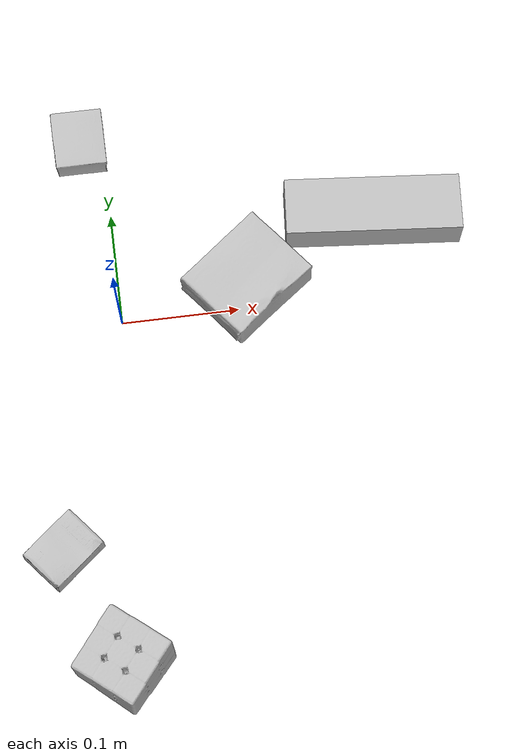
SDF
<sdf version="1.4">
  <world name="default">
    <light name="light1" type="point">
      <pose>0 0 1 0 0 0</pose>
      <diffuse>3 3 3 1</diffuse>
      <specular>3 3 3 1</specular>
    </light>
    <light name="light2" type="point">
      <pose>0 0.5 2 0 0 0</pose>
      <diffuse>1 1 1 1</diffuse>
      <specular>1 1 1 1</specular>
    </light>
    <light name="light3" type="point">
      <pose>0 0.5 2 0 0 0</pose>
      <diffuse>3 3 3 1</diffuse>
      <specular>3 3 3 1</specular>
    </light>
    <scene>
      <ambient>0.7 0.7 0.7</ambient>
    </scene>
    <model name="box1">
      <link name="link_box1">
        <collision name="default">
          <geometry>
            <mesh>
              <uri>model://jenga/collision_meshes/collision.obj</uri>
              <scale>1.0 1.0 1.0</scale>
            </mesh>
          </geometry>
          <surface>
            <friction>
              <ode>
                <mu>0.5</mu>
                <mu2>0.5</mu2>
              </ode>
            </friction>
          <contact>
        <ode>
            <max_vel>0</max_vel>
            <min_depth>0.0001</min_depth>
            <kp>1e8</kp>
        </ode>
    </contact></surface>
        </collision>
        <visual name="default">
          <geometry>
            <mesh>
              <uri>model://jenga/visual_meshes/visual.dae</uri>
              <scale>1.0 1.0 1.0</scale>
            </mesh>
          </geometry>
        </visual>
        <inertial>
          <mass>0.2062758058309555</mass>
          <pose>-2.502855807051674e-07 -0.00010250010382151231 -4.092339804628864e-05 0.0 -7.342154049184251e-07 0.0</pose>
          <inertia>
            <ixx>5.7081514e-05</ixx>
            <iyy>0.0003867828</iyy>
            <izz>0.00041292355</izz>
            <ixy>0</ixy>
            <ixz>0</ixz>
            <iyz>0</iyz>
          </inertia>
        </inertial>
      </link>
      <pose>0.22416968643665314 0.07010971754789352 0.014999995008111 -1.0965369880741081e-09 1.7657156228562022e-09 3.0519429928565303</pose>
    </model>
    <model name="box2">
      <link name="link_box2">
        <collision name="default">
          <geometry>
            <mesh>
              <uri>model://cracker_box/collision_meshes/collision.obj</uri>
              <scale>0.25 0.25 0.25</scale>
            </mesh>
          </geometry>
          <surface>
            <friction>
              <ode>
                <mu>0.5</mu>
                <mu2>0.5</mu2>
              </ode>
            </friction>
          <contact>
        <ode>
            <max_vel>0</max_vel>
            <min_depth>0.0001</min_depth>
            <kp>1e8</kp>
        </ode>
    </contact></surface>
        </collision>
        <visual name="default">
          <geometry>
            <mesh>
              <uri>model://cracker_box/visual_meshes/visual.dae</uri>
              <scale>0.25 0.25 0.25</scale>
            </mesh>
          </geometry>
        </visual>
        <inertial>
          <mass>0.023937078192830086</mass>
          <pose>0.00023660386796109378 6.358562677633017e-05 -0.00042573839891701937 -0.00031620780222672953 -0.011106490531565828 0.0025467947702904154</pose>
          <inertia>
            <ixx>3.8053279e-06</ixx>
            <iyy>6.2833433e-06</iyy>
            <izz>8.966907e-06</izz>
            <ixy>0</ixy>
            <ixz>0</ixz>
            <iyz>0</iyz>
          </inertia>
        </inertial>
      </link>
      <pose>-0.06622259318828583 -0.19243112206459045 0.009120449423789978 -0.011788102365613284 -0.007367152650785586 -2.450827305416774</pose>
    </model>
    <model name="box3">
      <link name="link_box3">
        <collision name="default">
          <geometry>
            <mesh>
              <uri>model://pudding_box/collision_meshes/collision.obj</uri>
              <scale>0.5 0.5 0.5</scale>
            </mesh>
          </geometry>
          <surface>
            <friction>
              <ode>
                <mu>0.5</mu>
                <mu2>0.5</mu2>
              </ode>
            </friction>
          <contact>
        <ode>
            <max_vel>0</max_vel>
            <min_depth>0.0001</min_depth>
            <kp>1e8</kp>
        </ode>
    </contact></surface>
        </collision>
        <visual name="default">
          <geometry>
            <mesh>
              <uri>model://pudding_box/visual_meshes/visual.dae</uri>
              <scale>0.5 0.5 0.5</scale>
            </mesh>
          </geometry>
        </visual>
        <inertial>
          <mass>0.06577561050653458</mass>
          <pose>0.0002447410661261529 0.00040339428232982755 -0.00025944135268218815 0.005213102261421096 -0.006603797796883786 0.020079827023418362</pose>
          <inertia>
            <ixx>1.8588986e-05</ixx>
            <iyy>1.2506803e-05</iyy>
            <izz>2.7451497e-05</izz>
            <ixy>0</ixy>
            <ixz>0</ixz>
            <iyz>0</iyz>
          </inertia>
        </inertial>
      </link>
      <pose>-0.019940784201025963 0.17033466696739197 0.009862905368208885 0.022348536216325 -0.011391713795072065 -3.130954521188638</pose>
    </model>
    <model name="box4">
      <link name="link_box4">
        <collision name="default">
          <geometry>
            <mesh>
              <uri>model://gelatin_box/collision_meshes/collision.obj</uri>
              <scale>1.0 1.0 1.0</scale>
            </mesh>
          </geometry>
          <surface>
            <friction>
              <ode>
                <mu>0.5</mu>
                <mu2>0.5</mu2>
              </ode>
            </friction>
          <contact>
        <ode>
            <max_vel>0</max_vel>
            <min_depth>0.0001</min_depth>
            <kp>1e8</kp>
        </ode>
    </contact></surface>
        </collision>
        <visual name="default">
          <geometry>
            <mesh>
              <uri>model://gelatin_box/visual_meshes/visual.dae</uri>
              <scale>1.0 1.0 1.0</scale>
            </mesh>
          </geometry>
        </visual>
        <inertial>
          <mass>0.21051041781902313</mass>
          <pose>0.000431961816502735 0.00011156871914863586 -0.0003640321083366871 -0.0010503719683328595 -0.0047558182256164224 0.016440557608480007</pose>
          <inertia>
            <ixx>0.0001486032</ixx>
            <iyy>0.00010614647</iyy>
            <izz>0.00022620716</izz>
            <ixy>0</ixy>
            <ixz>0</ixz>
            <iyz>0</iyz>
          </inertia>
        </inertial>
      </link>
      <pose>0.10906384140253067 0.022101756185293198 0.015168314799666405 0.0055974657714973975 -0.007304562534188509 -0.918351962134779</pose>
    </model>
    <model name="box5">
      <link name="link_box5">
        <collision name="default">
          <geometry>
            <mesh>
              <uri>model://rubiks_cube/collision_meshes/collision.obj</uri>
              <scale>1.0 1.0 1.0</scale>
            </mesh>
          </geometry>
          <surface>
            <friction>
              <ode>
                <mu>0.5</mu>
                <mu2>0.5</mu2>
              </ode>
            </friction>
          <contact>
        <ode>
            <max_vel>0</max_vel>
            <min_depth>0.0001</min_depth>
            <kp>1e8</kp>
        </ode>
    </contact></surface>
        </collision>
        <visual name="default">
          <geometry>
            <mesh>
              <uri>model://rubiks_cube/visual_meshes/visual.dae</uri>
              <scale>1.0 1.0 1.0</scale>
            </mesh>
          </geometry>
        </visual>
        <inertial>
          <mass>0.13810032606124878</mass>
          <pose>2.6721041649580002e-05 5.256967051536776e-05 -7.264316082000732e-06 -0.05467240103362065 -0.09813937396878175 -0.03445717948301123</pose>
          <inertia>
            <ixx>7.63097e-05</ixx>
            <iyy>7.595384e-05</iyy>
            <izz>7.694205e-05</izz>
            <ixy>0</ixy>
            <ixz>0</ixz>
            <iyz>0</iyz>
          </inertia>
        </inertial>
      </link>
      <pose>-0.026152515783905983 -0.2896451950073242 0.028678972274065018 -3.514068417722875e-06 -9.367956915483642e-07 -2.2543629958984233</pose>
    </model>
  <physics type="ode">
      <max_contacts>50</max_contacts>
      <ode>
        <solver>
          <type>quick</type>
          <iters>75</iters>
        </solver>
        <constraints>
          <contact_max_correcting_vel>0</contact_max_correcting_vel>
          <contact_surface_layer>0</contact_surface_layer>
        </constraints>
      </ode>
    </physics></world>
</sdf>
